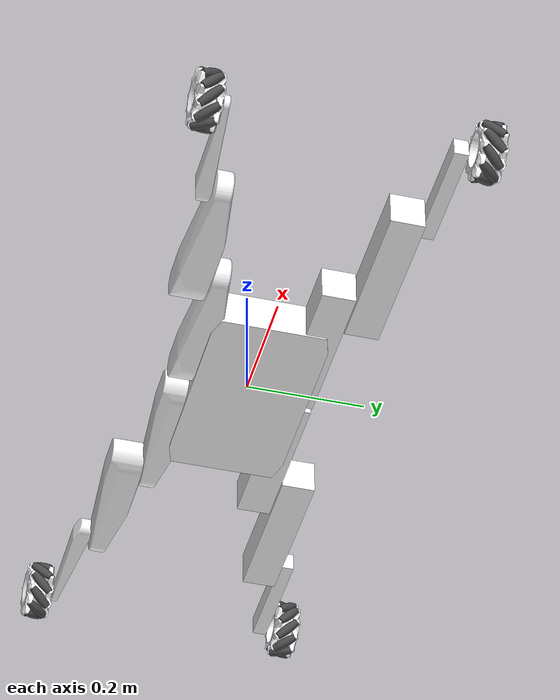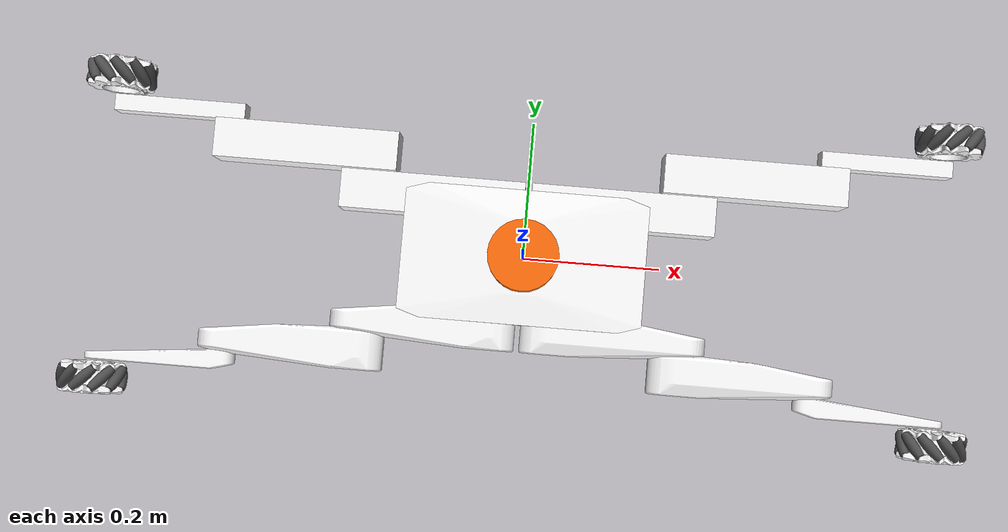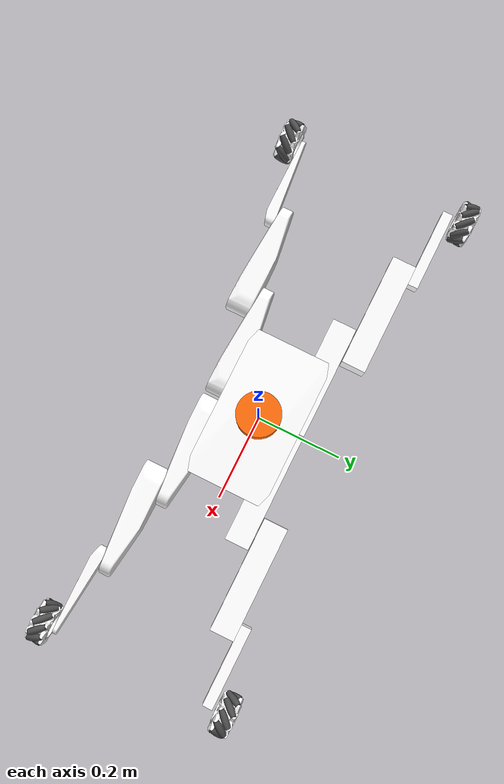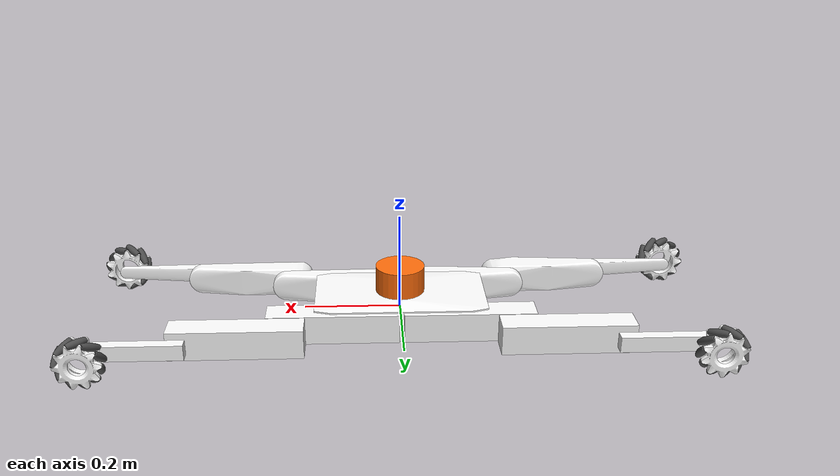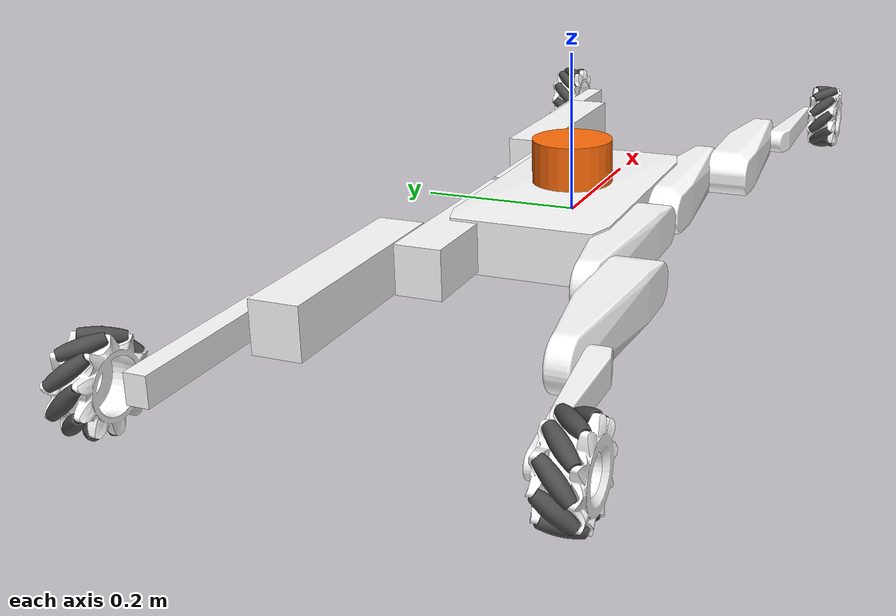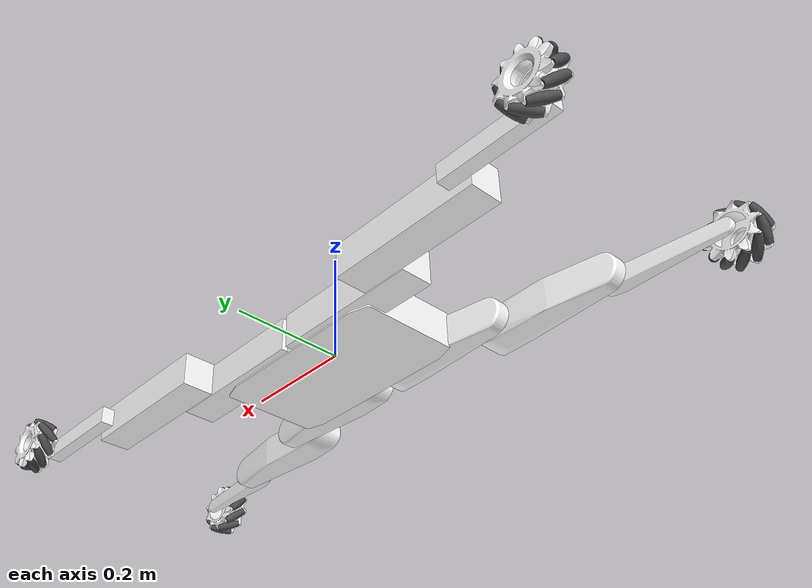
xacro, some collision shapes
<?xml version="1.0"?>
<robot name="mulinex" xmlns:xacro="http://ros.org/wiki/xacro">

    <xacro:include filename="$(find mulinex_description)/urdf/links.xacro" />
    <xacro:include filename="$(find mulinex_description)/urdf/leg.xacro" />
    <xacro:include filename="$(find mulinex_description)/urdf/material.xacro" />
    <xacro:include filename="$(find mulinex_description)/urdf/mul_hw_ign.xacro" />
    <xacro:include filename="$(find mulinex_description)/urdf/imu_sensor.xacro" />
    <xacro:include filename="$(find mulinex_description)/urdf/lidar_sensor.xacro" />
    <xacro:property name="mulinex_base" value="file://$(find mulinex_description)/meshes//Body.stl" />
    <xacro:arg name="use_gazebo" default="true" />
    <xacro:arg name="mulinex_namespace" default="mulinex"/>
    <xacro:arg name="lidar_3D" default="true"/>
    <xacro:arg name="yaml_file" default=""/>

    <xacro:arg name="simplify_meshes_lower_leg" default="true"/>

    <!-- use "normal" if normal feet are used
        use "omni" if omniwheels are used
        use "goat" if goat feet are used
        use "track" if track feet are used -->
    <xacro:arg name="feet_type" default="omni"/>

    <xacro:arg name="jnt_prefix" default="" />
    <xacro:arg name="front_haa" default="0.0" />
    <xacro:arg name="hind_haa" default="0.0" />

    <xacro:arg name="RH_HFE" default="0.0" />
    <xacro:arg name="RH_KFE" default="0.0" />
    <xacro:arg name="RF_HFE" default="0.0" />
    <xacro:arg name="RF_KFE" default="0.0" />

    <xacro:arg name="LH_HFE" default="0.0" />
    <xacro:arg name="LH_KFE" default="0.0" />
    <xacro:arg name="LF_HFE" default="0.0" />
    <xacro:arg name="LF_KFE" default="0.0" />

    <link name="$(arg jnt_prefix)base_link">
        <visual>
            <material name="white" />
            <origin xyz="0 0 0" rpy="0 0 0" />
            <geometry>
                <mesh filename="${mulinex_base}" />
            </geometry>
        </visual>
        <collision>
            <origin xyz="0 0 0" rpy="0 0 0" />
            <geometry>
                <box size="0.353 0.090 0.066" />
            </geometry>
        </collision>
        <inertial>
            <mass value="1.3008737" />
            <origin xyz="-1.4565496e-03 -2.5110071e-03 -4.2484136e-03" rpy="0 0 0" />
            <inertia ixx="4.0762590e-03" ixy="-2.5234809e-05" ixz="-3.2587794e-06"
                iyy="9.2413606e-03" iyz="-8.0660183e-06"
                izz="1.2268730e-02" />
        </inertial>
    </link>

    <gazebo>

        <plugin
            filename="ignition-gazebo-odometry-publisher-system"
            name="ignition::gazebo::systems::OdometryPublisher">
            <dimensions>3</dimensions>
            <odom_publish_frequency>100</odom_publish_frequency>
            <odom_frame>$(arg mulinex_namespace)/gt_odom</odom_frame>
            <robot_base_frame>$(arg mulinex_namespace)/base_link</robot_base_frame>
            <odom_topic>$(arg mulinex_namespace)/gt_odom</odom_topic>
            <tf_topic>$(arg mulinex_namespace)/gt_pose_gazebo</tf_topic>
        </plugin>
    </gazebo>

    <xacro:leg
        prefix="LH"
        gazebo="$(arg use_gazebo)"
        jnt_pref="$(arg jnt_prefix)"
        simplify_meshes="$(arg simplify_meshes_lower_leg)"
        feet_type="$(arg feet_type)"
        />
    <xacro:leg
        prefix="LF"
        gazebo="$(arg use_gazebo)"
        jnt_pref="$(arg jnt_prefix)"
        simplify_meshes="$(arg simplify_meshes_lower_leg)"
        feet_type="$(arg feet_type)"
        />
    <xacro:leg
        prefix="RF"
        gazebo="$(arg use_gazebo)"
        jnt_pref="$(arg jnt_prefix)"
        simplify_meshes="$(arg simplify_meshes_lower_leg)"
        feet_type="$(arg feet_type)"
        />
    <xacro:leg
        prefix="RH"
        gazebo="$(arg use_gazebo)"
        jnt_pref="$(arg jnt_prefix)"
        simplify_meshes="$(arg simplify_meshes_lower_leg)"
        feet_type="$(arg feet_type)"
        />
    <xacro:imu_sensor namespace="$(arg mulinex_namespace)"/>
    <xacro:lidar_sensor tredi="$(arg lidar_3D)" namespace="$(arg mulinex_namespace)"/>

    <xacro:mulinex_ign_hw gazebo="$(arg use_gazebo)" yaml="$(arg yaml_file)"/>
</robot>

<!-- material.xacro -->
<robot xmlns:xacro="http://www.ros.org/wiki/xacro">

  <material name="black">
    <color rgba="0.0 0.0 0.0 1.0"/>
  </material>

  <material name="blue">
    <color rgba="0.0 0.0 0.8 1.0"/>
  </material>

  <material name="green">
    <color rgba="0.0 0.8 0.0 1.0"/>
  </material>

  <material name="grey">
    <color rgba="0.2 0.2 0.2 1.0"/>
  </material>

  <material name="orange">
    <color rgba="${255/255} ${108/255} ${10/255} 1.0"/>
  </material>

  <material name="brown">
    <color rgba="${222/255} ${207/255} ${195/255} 1.0"/>
  </material>

  <material name="red">
    <color rgba="0.8 0.0 0.0 1.0"/>
  </material>

  <material name="white">
    <color rgba="1.0 1.0 1.0 1.0"/>
  </material>

</robot>

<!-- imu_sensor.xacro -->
<robot xmlns:xacro="http://ros.org/wiki/xacro">

    <xacro:property name="PI" value="3.141592" />
    <xacro:property name="b2i_x" value="0.0" />
    <xacro:property name="b2i_y" value="0.0" />
    <xacro:property name="b2i_z" value="0.0" />
    <xacro:property name="b2i_R" value="0.0" />
    <xacro:property name="b2i_P" value="0.0" />
    <xacro:property name="b2i_Y" value="0.0" />
    <xacro:property name="imu_mass" value="0.01" />
    <xacro:property name="imu_len_x" value="0.01" />
    <xacro:property name="imu_len_y" value="0.01" />
    <xacro:property name="imu_len_z" value="0.01" />

    <xacro:include filename="$(find mulinex_description)/urdf/base_inertia.xacro" />

    <xacro:macro name="imu_sensor" params="namespace">
        <joint name="base2imu" type="fixed">
            <parent link="base_link"/>
            <child link="imu_link"/>
            <origin xyz="${b2i_x} ${b2i_y} ${b2i_z}" rpy="${b2i_R} ${b2i_P} ${b2i_Y}"/>
        </joint>
        <link name="imu_link">
            <visual>
                <geometry>
                    <box size="${imu_len_x} ${imu_len_y} ${imu_len_z}"/>
                </geometry>
                <material name="orange"/>

            </visual>

            <collision>
                <geometry>
                    <box size="${imu_len_x} ${imu_len_y} ${imu_len_z}"/>
                </geometry>
            </collision>

            <xacro:box_inertia m="${imu_mass}" w="${imu_len_x}" d="${imu_len_y}" h="${imu_len_z}"/>

        </link>
        <gazebo reference="imu_link">
            <sensor name="imu_sensor" type="imu">
                    <ignition_frame_id>${namespace}/imu_link</ignition_frame_id>
                    <always_on>1</always_on>
                    <update_rate>100</update_rate>
                    <visualize>true</visualize>
                    <topic>${namespace}/imu</topic>
                    <plugin filename="libignition-gazebo-imu-system.so"
                            name="ignition::gazebo::systems::Imu">
                    </plugin>

                    <imu>
                        <angular_velocity>
                            <x>
                                <noise type="gaussian">
                                <mean>0.0</mean>
                                <stddev>2e-4</stddev>
                                <bias_mean>0.0000075</bias_mean>
                                <bias_stddev>0.0000008</bias_stddev>
                                </noise>
                            </x>
                            <y>
                                <noise type="gaussian">
                                <mean>0.0</mean>
                                <stddev>2e-4</stddev>
                                <bias_mean>0.0000075</bias_mean>
                                <bias_stddev>0.0000008</bias_stddev>
                                </noise>
                            </y>
                            <z>
                                <noise type="gaussian">
                                <mean>0.0</mean>
                                <stddev>2e-4</stddev>
                                <bias_mean>0.0000075</bias_mean>
                                <bias_stddev>0.0000008</bias_stddev>
                                </noise>
                            </z>
                        </angular_velocity>
                        <linear_acceleration>
                            <x>
                                <noise type="gaussian">
                                <mean>0.0</mean>
                                <stddev>1.7e-2</stddev>
                                <bias_mean>0.1</bias_mean>
                                <bias_stddev>0.001</bias_stddev>
                                </noise>
                            </x>
                            <y>
                                <noise type="gaussian">
                                <mean>0.0</mean>
                                <stddev>1.7e-2</stddev>
                                <bias_mean>0.1</bias_mean>
                                <bias_stddev>0.001</bias_stddev>
                                </noise>
                            </y>
                            <z>
                                <noise type="gaussian">
                                <mean>0.0</mean>
                                <stddev>1.7e-2</stddev>
                                <bias_mean>0.1</bias_mean>
                                <bias_stddev>0.001</bias_stddev>
                                </noise>
                            </z>
                        </linear_acceleration>
                    </imu>
                </sensor>
        </gazebo>
    </xacro:macro>

</robot>

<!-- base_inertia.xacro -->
<robot xmlns:xacro="http://ros.org/wiki/xacro">

    <xacro:macro name="box_inertia" params="m w h d">
    <inertial>
      <origin xyz="0 0 0" rpy="${pi/2} 0 ${pi/2}"/>
      <mass value="${m}"/>
      <inertia ixx="${(m/12) * (h*h + d*d)}" ixy="0.0" ixz="0.0" iyy="${(m/12) * (w*w + d*d)}" iyz="0.0" izz="${(m/12) * (w*w + h*h)}"/>
    </inertial>
  </xacro:macro>

  <xacro:macro name="cylinder_inertia" params="m r h dir">
    <inertial>
      <xacro:if value="${dir == 'z'}">
        <origin xyz="0 0 0" rpy="0 0 0" />
      </xacro:if>
      <xacro:if value="${dir == 'x'}">
        <origin xyz="0 0 0" rpy="0 ${pi/2} 0" />
      </xacro:if>
      <xacro:if value="${dir == 'y'}">
        <origin xyz="0 0 0" rpy="${pi/2} 0 0" />
      </xacro:if>
      <mass value="${m}"/>
      <inertia ixx="${(m/12) * (3*r*r + h*h)}" ixy = "0" ixz = "0" iyy="${(m/12) * (3*r*r + h*h)}" iyz = "0" izz="${(m/2) * (r*r)}"/>
    </inertial>
  </xacro:macro>

</robot>

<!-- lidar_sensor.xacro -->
<robot xmlns:xacro="http://ros.org/wiki/xacro">

    <xacro:property name="PI" value="3.141592" />

    <xacro:property name="b2l_x" value="0.0" />
    <xacro:property name="b2l_y" value="0.0" />
    <xacro:property name="b2l_z" value="0.065" />
    <xacro:property name="b2l_R" value="0.0" />
    <xacro:property name="b2l_P" value="0.0" />
    <xacro:property name="b2l_Y" value="0.0" />
    <xacro:property name="lidar_mass" value="0.125" />
    <xacro:property name="lidar_len_rad" value="0.0508" />
    <xacro:property name="lidar_len_h" value="0.055" />
    <xacro:include filename="$(find mulinex_description)/urdf/base_inertia.xacro" />

    <xacro:macro name="lidar_sensor" params="tredi namespace">
        <joint name="base2lidar" type="fixed">
            <parent link="base_link"/>
            <child link="lidar_link"/>
            <origin xyz="${b2l_x} ${b2l_y} ${b2l_z}" rpy="${b2l_R} ${b2l_P} ${b2l_Y}"/>
        </joint>
        <link name="lidar_link">
            <collision>
                <origin xyz="0 0 0" rpy="0 0 0"/>
                <geometry>
                    <cylinder radius="${lidar_len_rad}" length="${lidar_len_h}"/>
                </geometry>
            </collision>

            <visual>
                <origin xyz="0 0 0" rpy="0 0 0"/>
                <geometry>
                    <cylinder radius="${lidar_len_rad}" length="${lidar_len_h}"/>
                </geometry>
                <material name="orange"/>
            </visual>

            <xacro:cylinder_inertia m="${lidar_mass}" r="${lidar_len_rad}" h="${lidar_len_h}" dir="z"/>

        </link>
        <gazebo reference="lidar_link">
            <sensor name="RGLsensor" type="custom">
                <plugin filename="RGLServerPluginInstance" name="rgl::RGLServerPluginInstance">
                    <range>
                    <min>0</min>
                    <max>100</max>
                    </range>
                    <update_rate>10</update_rate>
                    <update_on_paused_sim>false</update_on_paused_sim>
                    <topic>${namespace}/rgl_lidar</topic>
                    <frame>${namespace}/lidar_link</frame>
                    <pattern_preset>Puck</pattern_preset>
                </plugin>
            </sensor>
        </gazebo>

    </xacro:macro>

</robot>
